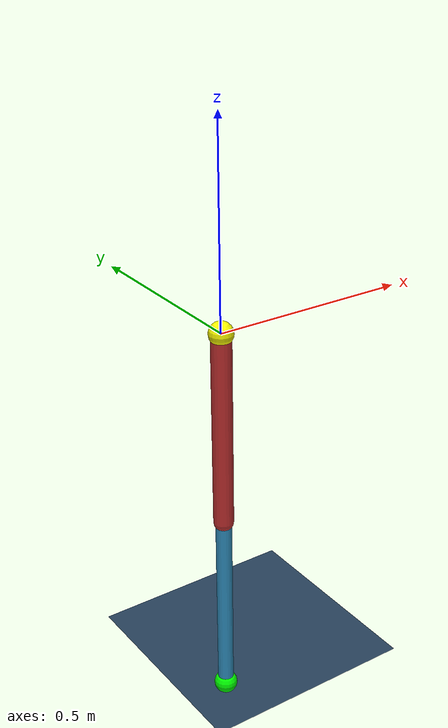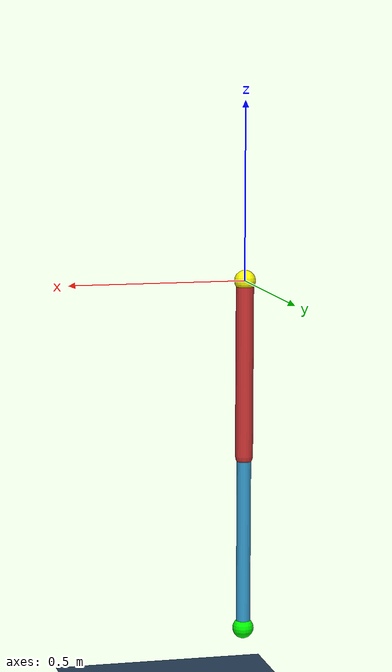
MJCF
<!-- MuJoCo MJCF: Double Pendulum
     Two rigid links connected by hinge joints, suspended from a fixed pivot.
     Suitable for swing-up / stabilisation experiments.
-->
<mujoco model="double_pendulum">

  <option timestep="0.01" gravity="0 0 -9.81" integrator="RK4"/>

  <asset>
    <texture type="skybox" builtin="gradient" rgb1="0.3 0.5 0.7" rgb2="0 0 0"
             width="512" height="512"/>
    <texture name="grid" type="2d" builtin="checker" rgb1="0.1 0.2 0.3"
             rgb2="0.2 0.3 0.4" width="300" height="300" mark="edge" markrgb=".2 .3 .4"/>
    <material name="grid"  texture="grid"  texrepeat="1 1" texuniform="true" reflectance=".2"/>
  </asset>

  <worldbody>
    <light pos="0 0 3" dir="0 0 -1" diffuse="1 1 1"/>
    <geom name="floor" type="plane" size="2 2 0.1" material="grid" pos="0 0 -1.1"/>

    <!-- Fixed pivot at origin -->
    <site name="pivot" pos="0 0 0" size="0.03" rgba="1 1 0 1"/>

    <body name="link1" pos="0 0 0">
      <joint name="joint1" type="hinge" axis="0 1 0" pos="0 0 0"
             limited="false" damping="0.05" armature="0.01"/>
      <geom name="geom1" type="capsule" fromto="0 0 0 0 0 -0.5"
            size="0.025" rgba="0.8 0.2 0.2 1" mass="1.0"/>
      <site name="com1" pos="0 0 -0.25" size="0.02" rgba="0.8 0.2 0.2 0.5"/>

      <body name="link2" pos="0 0 -0.5">
        <joint name="joint2" type="hinge" axis="0 1 0" pos="0 0 0"
               limited="false" damping="0.05" armature="0.01"/>
        <geom name="geom2" type="capsule" fromto="0 0 0 0 0 -0.5"
              size="0.02" rgba="0.2 0.6 0.8 1" mass="1.0"/>
        <site name="tip" pos="0 0 -0.5" size="0.03" rgba="0 1 0 1"/>
      </body>
    </body>
  </worldbody>

  <actuator>
    <!-- Torque actuators on each joint; gear scales effort -->
    <motor name="torque1" joint="joint1" gear="1" ctrllimited="true" ctrlrange="-2 2"/>
    <motor name="torque2" joint="joint2" gear="1" ctrllimited="true" ctrlrange="-2 2"/>
  </actuator>

  <sensor>
    <jointpos  name="q1"  joint="joint1"/>
    <jointpos  name="q2"  joint="joint2"/>
    <jointvel  name="dq1" joint="joint1"/>
    <jointvel  name="dq2" joint="joint2"/>
  </sensor>

</mujoco>
